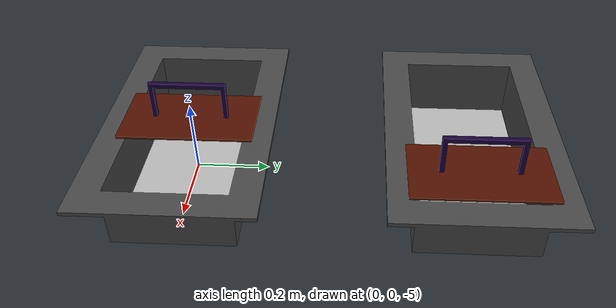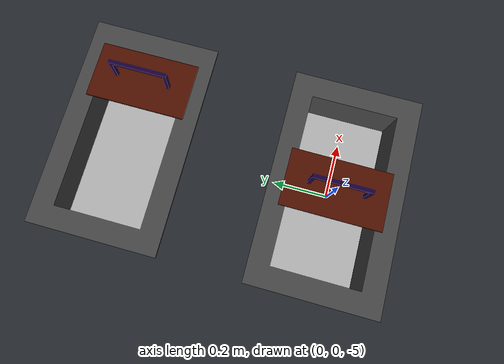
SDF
<?xml version="1.0" ?>
<sdf version="1.9">
    <world name="task_bins">
        <light type="directional" name="sun">
            <cast_shadows>true</cast_shadows>
            <pose>0 0 10 0 0 0</pose>
            <diffuse>0.8 0.8 0.8 1</diffuse>
            <specular>0.2 0.2 0.2 1</specular>
            <attenuation>
                <range>1000</range>
                <constant>0.9</constant>
                <linear>0.01</linear>
                <quadratic>0.001</quadratic>
            </attenuation>
            <direction>-0.5 0.1 -0.9</direction>
        </light>

        <model name="simple_pool">
            <static>true</static>
            <link name="link">
                <visual name="pool_visual">
                    <geometry>
                        <mesh>
                            <uri>../../../assets/common/simple_pool/simple_pool.dae</uri>
                        </mesh>
                    </geometry>
                </visual>
                <collision name="pool_collision">
                    <geometry>
                        <mesh>
                            <uri>../../../assets/common/simple_pool/simple_pool.dae</uri>
                        </mesh>
                    </geometry>
                </collision>
            </link>
        </model>

        <model name="bin_bootlegger">
            <static>true</static>
            <link name="bin_bootlegger">
                <pose>0 0 -5 0 0 0</pose>
                <visual name="bin_bootlegger_visual">
                    <geometry>
                        <mesh>
                            <uri>../../../assets/robosub2022/bins/bin_bootlegger.dae</uri>
                        </mesh>
                    </geometry>
                </visual>
                <collision name="bin_bootlegger_collision">
                    <geometry>
                        <mesh>
                            <uri>../../../assets/robosub2022/bins/bin_bootlegger.dae</uri>
                        </mesh>
                    </geometry>
                </collision>
            </link>
        </model>

        <model name="bootlegger_cover">
            <static>false</static>
            <link name="bootlegger_cover">
                <pose>0 0 -5 0 0 0</pose>
                <visual name="bootlegger_cover_visual">
                    <geometry>
                        <mesh>
                            <uri>../../../assets/robosub2022/bins/cover.dae</uri>
                        </mesh>
                    </geometry>
                </visual>
                <collision name="bootlegger_cover_collision">
                    <geometry>
                        <mesh>
                            <uri>../../../assets/robosub2022/bins/cover.dae</uri>
                        </mesh>
                    </geometry>
                </collision>
            </link>
        </model>

        <model name="bin_gman">
            <static>true</static>
            <link name="bin_gman">
                <pose>0 0.75 -5 0 0 0</pose>
                <visual name="bin_gman_visual">
                    <geometry>
                        <mesh>
                            <uri>../../../assets/robosub2022/bins/bin_gman.dae</uri>
                        </mesh>
                    </geometry>
                </visual>
                <collision name="bin_gman_collision">
                    <geometry>
                        <mesh>
                            <uri>../../../assets/robosub2022/bins/bin_gman.dae</uri>
                        </mesh>
                    </geometry>
                </collision>
            </link>
        </model>

        <model name="gman_cover">
            <static>false</static>
            <link name="gman_cover">
                <pose>0.2 0.75 -5 0 0 0</pose>
                <visual name="gman_cover_visual">
                    <geometry>
                        <mesh>
                            <uri>../../../assets/robosub2022/bins/cover.dae</uri>
                        </mesh>
                    </geometry>
                </visual>
                <collision name="gman_cover_collision">
                    <geometry>
                        <mesh>
                            <uri>../../../assets/robosub2022/bins/cover.dae</uri>
                        </mesh>
                    </geometry>
                </collision>
            </link>
        </model>

    </world>
</sdf>
